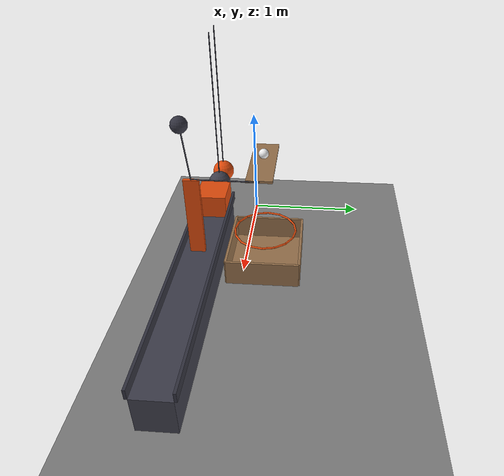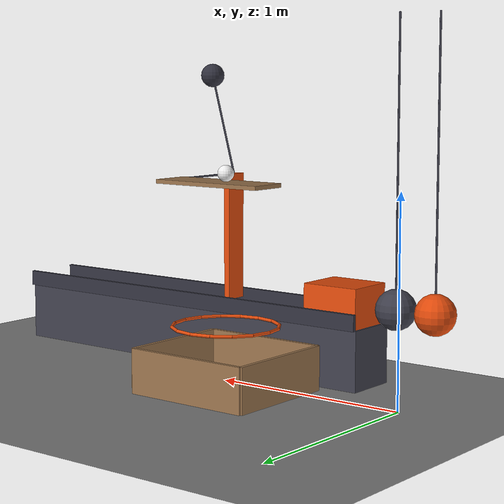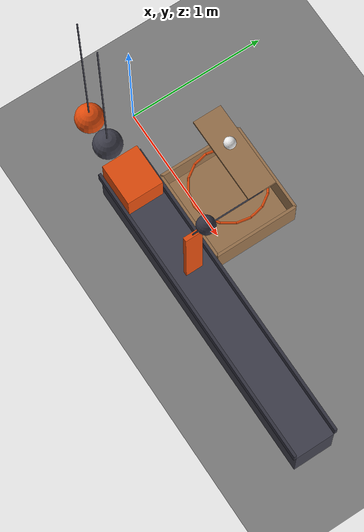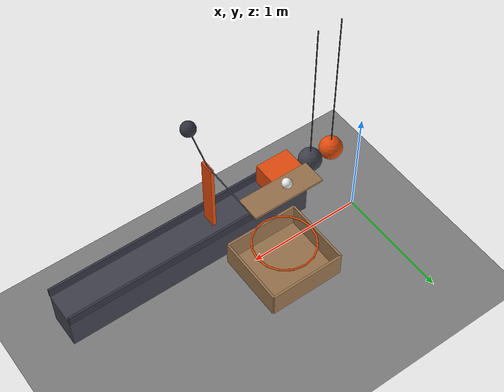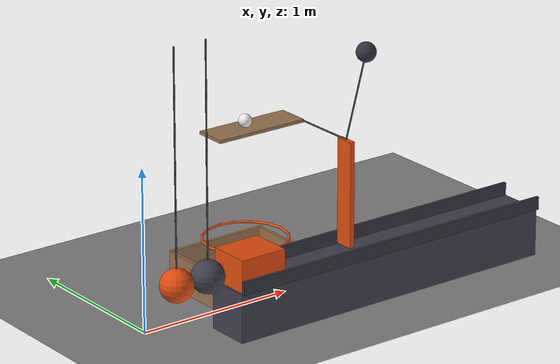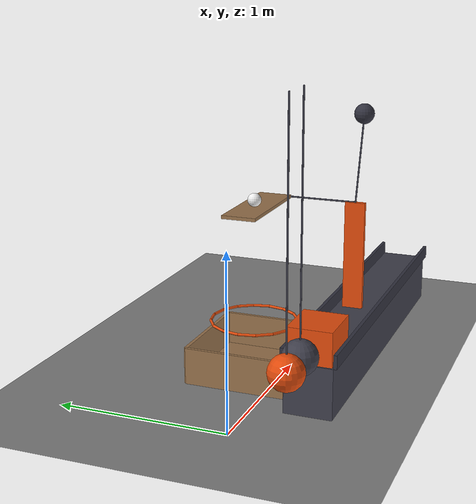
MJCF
<mujoco model="pendulums_release_a_ball">
  <compiler angle="radian"/>
  <option timestep="0.002"/>
  <worldbody>
    <geom name="floor" type="plane" size="6 6 0.1" friction="0.8 0.005 0.002"/>
    <body name="pend1" pos="0 -0.32 1.8">
      <joint name="pend1_hinge" type="hinge" pos="0 0 0" axis="0 1 0" limited="true" range="-1.39626 1.13446" damping="0.002"/>
      <geom name="pend1" type="sphere" pos="0 0 -1.4" size="0.1" mass="3" solref="0.01 0.2" rgba="0.9 0.3 0.05 1"/>
      <geom name="pend1 rod" type="capsule" size="0.005" fromto="0 0 0 0 0 -1.3" mass="0.015" rgba="0.25 0.25 0.3 1"/>
    </body>
    <body name="pend2" pos="0.215 -0.32 1.8">
      <joint name="pend2_hinge" type="hinge" pos="0 0 0" axis="0 1 0" limited="true" range="-1.48353 0.0872665" damping="0.002"/>
      <geom name="pend2" type="sphere" pos="0 0 -1.4" size="0.1" mass="3" solref="0.01 0.2" rgba="0.25 0.25 0.3 1"/>
      <geom name="pend2 rod" type="capsule" size="0.005" fromto="0 0 0 0 0 -1.3" mass="0.015" rgba="0.25 0.25 0.3 1"/>
    </body>
    <body name="cart track">
      <geom name="cart track" type="box" pos="1.45 -0.32 0.15" size="1.1 0.14 0.15" friction="0.01 0.005 0.0001" rgba="0.25 0.25 0.3 1"/>
    </body>
    <body name="left guide">
      <geom name="left guide" type="box" pos="1.45 -0.17 0.34" size="1.1 0.01 0.04" friction="0.01 0.005 0.0001" rgba="0.2 0.2 0.25 1"/>
    </body>
    <body name="right guide">
      <geom name="right guide" type="box" pos="1.45 -0.47 0.34" size="1.1 0.01 0.04" friction="0.01 0.005 0.0001" rgba="0.2 0.2 0.25 1"/>
    </body>
    <body name="cart" pos="0.51 -0.32 0.4">
      <freejoint/>
      <geom name="cart" type="box" pos="0 0 0" size="0.15 0.13 0.1" mass="0.6" friction="0.02 0.001 0.001" solref="0.01 1" rgba="0.9 0.3 0.05 1"/>
    </body>
    <body name="flap" pos="1.2 -0.32 1">
      <joint name="flap_hinge" type="hinge" pos="0 0 0" axis="0 1 0" limited="true" range="-1.5708 0" damping="0.05"/>
      <geom name="flap" type="box" pos="0 0 -0.325" size="0.015 0.06 0.325" mass="0.04" friction="0.2 0.005 0.0001" solref="0.01 1" rgba="0.9 0.3 0.05 1"/>
      <geom name="flap shelf" type="box" pos="-0.3 0.5 0" size="0.3 0.1 0.01" mass="0.08" friction="0.4 0.005 0.0001" solref="0.01 1" rgba="0.6 0.45 0.3 1"/>
      <geom name="flap shaft" type="capsule" size="0.005" fromto="0 0 0 0 0.5 0" mass="0.01" contype="0" conaffinity="0" rgba="0.25 0.25 0.3 1"/>
      <geom name="flap counterweight" type="sphere" pos="0.14 0 0.5" size="0.06" mass="0.4" solref="0.01 1" rgba="0.2 0.2 0.25 1"/>
      <geom name="flap strut" type="capsule" size="0.005" fromto="0 0 0 0.14 0 0.5" mass="0.015" rgba="0.25 0.25 0.3 1"/>
    </body>
    <body name="hoop">
      <geom name="hoop_00" type="capsule" size="0.008" fromto="1.108 0.18 0.32 1.08836 0.278732 0.32" rgba="0.9 0.3 0.05 1"/>
      <geom name="hoop_01" type="capsule" size="0.008" fromto="1.08836 0.278732 0.32 1.03243 0.362434 0.32" rgba="0.9 0.3 0.05 1"/>
      <geom name="hoop_02" type="capsule" size="0.008" fromto="1.03243 0.362434 0.32 0.948732 0.418361 0.32" rgba="0.9 0.3 0.05 1"/>
      <geom name="hoop_03" type="capsule" size="0.008" fromto="0.948732 0.418361 0.32 0.85 0.438 0.32" rgba="0.9 0.3 0.05 1"/>
      <geom name="hoop_04" type="capsule" size="0.008" fromto="0.85 0.438 0.32 0.751268 0.418361 0.32" rgba="0.9 0.3 0.05 1"/>
      <geom name="hoop_05" type="capsule" size="0.008" fromto="0.751268 0.418361 0.32 0.667566 0.362434 0.32" rgba="0.9 0.3 0.05 1"/>
      <geom name="hoop_06" type="capsule" size="0.008" fromto="0.667566 0.362434 0.32 0.611639 0.278732 0.32" rgba="0.9 0.3 0.05 1"/>
      <geom name="hoop_07" type="capsule" size="0.008" fromto="0.611639 0.278732 0.32 0.592 0.18 0.32" rgba="0.9 0.3 0.05 1"/>
      <geom name="hoop_08" type="capsule" size="0.008" fromto="0.592 0.18 0.32 0.611639 0.0812677 0.32" rgba="0.9 0.3 0.05 1"/>
      <geom name="hoop_09" type="capsule" size="0.008" fromto="0.611639 0.0812677 0.32 0.667566 -0.00243355 0.32" rgba="0.9 0.3 0.05 1"/>
      <geom name="hoop_10" type="capsule" size="0.008" fromto="0.667566 -0.00243355 0.32 0.751268 -0.0583609 0.32" rgba="0.9 0.3 0.05 1"/>
      <geom name="hoop_11" type="capsule" size="0.008" fromto="0.751268 -0.0583609 0.32 0.85 -0.078 0.32" rgba="0.9 0.3 0.05 1"/>
      <geom name="hoop_12" type="capsule" size="0.008" fromto="0.85 -0.078 0.32 0.948732 -0.0583609 0.32" rgba="0.9 0.3 0.05 1"/>
      <geom name="hoop_13" type="capsule" size="0.008" fromto="0.948732 -0.0583609 0.32 1.03243 -0.00243355 0.32" rgba="0.9 0.3 0.05 1"/>
      <geom name="hoop_14" type="capsule" size="0.008" fromto="1.03243 -0.00243355 0.32 1.08836 0.0812677 0.32" rgba="0.9 0.3 0.05 1"/>
      <geom name="hoop_15" type="capsule" size="0.008" fromto="1.08836 0.0812677 0.32 1.108 0.18 0.32" rgba="0.9 0.3 0.05 1"/>
    </body>
    <body name="box">
      <geom name="box_base" type="box" pos="0.85 0.18 0.01" size="0.325 0.3 0.01" friction="0.8 0.02 0.02" solref="0.01 1" rgba="0.6 0.45 0.3 1"/>
      <geom name="box_near_wall" type="box" pos="0.525 0.18 0.11" size="0.01 0.3 0.11" friction="0.8 0.02 0.02" solref="0.01 1" rgba="0.6 0.45 0.3 1"/>
      <geom name="box_far_wall" type="box" pos="1.175 0.18 0.11" size="0.01 0.3 0.11" friction="0.8 0.02 0.02" solref="0.01 1" rgba="0.6 0.45 0.3 1"/>
      <geom name="box_left_wall" type="box" pos="0.85 0.48 0.11" size="0.325 0.01 0.11" friction="0.8 0.02 0.02" solref="0.01 1" rgba="0.6 0.45 0.3 1"/>
      <geom name="box_right_wall" type="box" pos="0.85 -0.12 0.11" size="0.325 0.01 0.11" friction="0.8 0.02 0.02" solref="0.01 1" rgba="0.6 0.45 0.3 1"/>
    </body>
    <body name="ball" pos="0.85 0.18 1.05">
      <freejoint/>
      <geom name="ball" type="sphere" pos="0 0 0" size="0.04" mass="0.05" condim="6" friction="0.8 0.02 0.02" solref="0.01 1" rgba="0.95 0.95 0.95 1"/>
    </body>
  </worldbody>
  <keyframe>
    <key name="start" qpos="1.0472 0 0.51 -0.32 0.4 1 0 0 0 0 0.85 0.18 1.05 1 0 0 0" qvel="0 0 0 0 0 0 0 0 0 0 0 0 0 0 0"/>
  </keyframe>
</mujoco>
